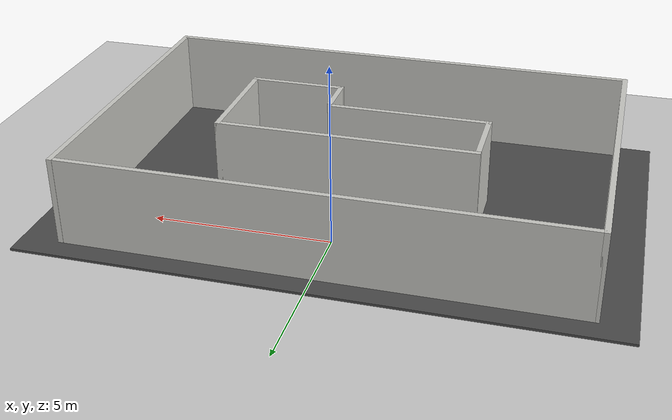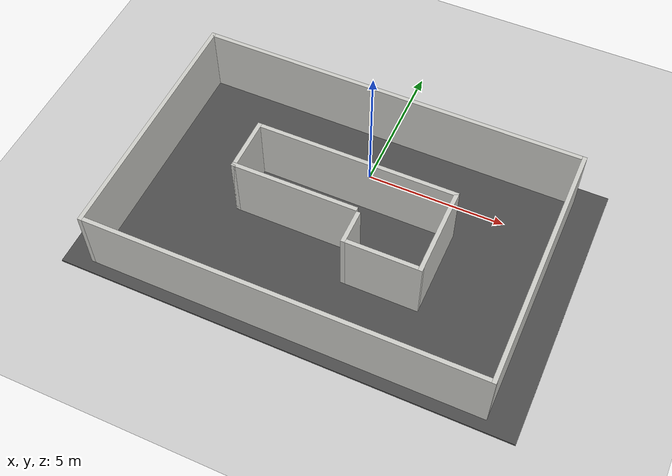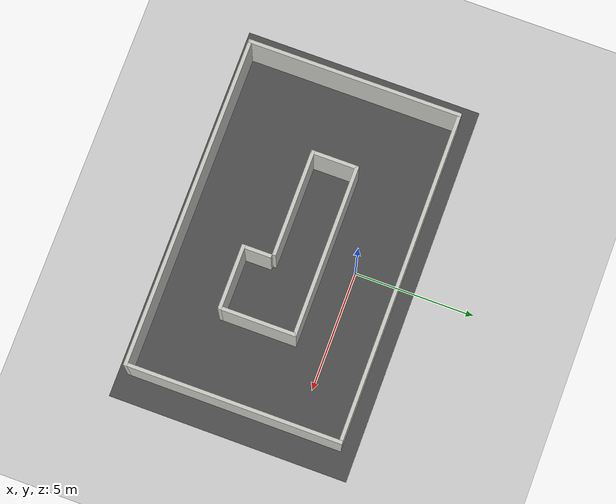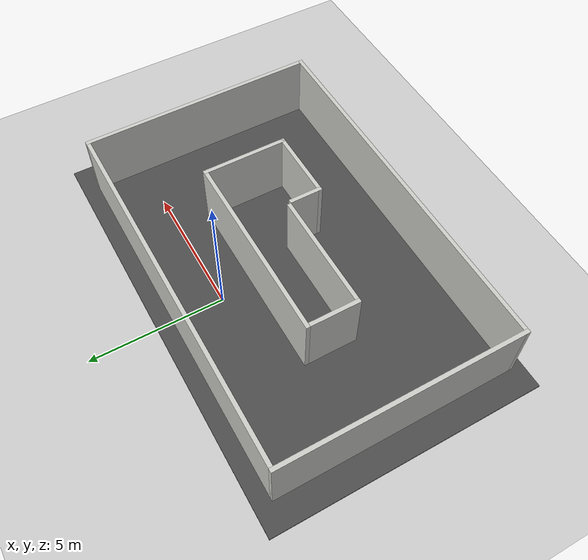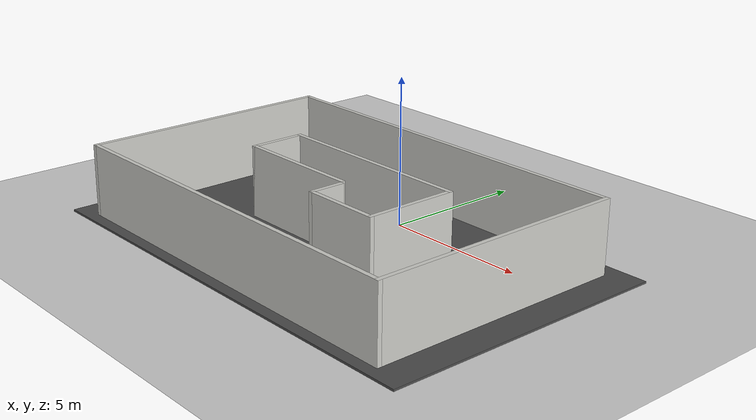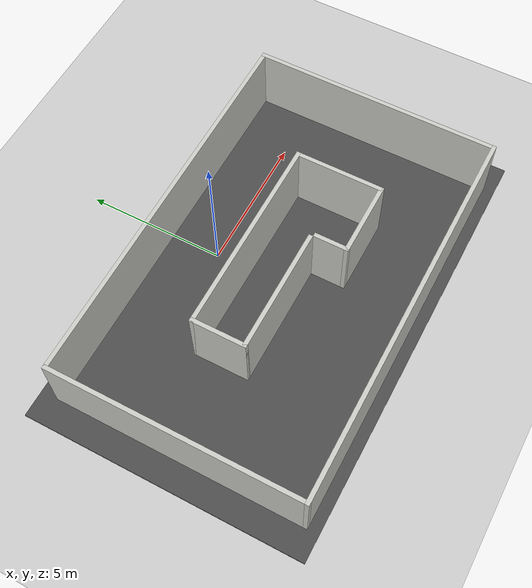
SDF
<sdf version="1.6">
 <world name="default">
  <light name="sun" type="directional">
   <pose>0 0 10 0 -0 0</pose>
   <diffuse>0.8 0.8 0.8 1</diffuse>
   <specular>0.2 0.2 0.2 1</specular>
   <attenuation>
    <range>1000</range>
    <constant>0.9</constant>
    <linear>0.01</linear>
    <quadratic>0.001</quadratic>
   </attenuation>
   <direction>-0.5 0.1 -0.9</direction>
  </light>
  <model name="ground_plane">
   <static>1</static>
   <link name="link">
    <collision name="collision">
     <geometry><plane><normal>0 0 1</normal><size>100 100</size></plane></geometry>
     <surface><friction><ode><mu>100</mu><mu2>50</mu2></ode></friction></surface>
    </collision>
    <visual name="visual">
     <cast_shadows>0</cast_shadows>
     <geometry><plane><normal>0 0 1</normal><size>100 100</size></plane></geometry>
     <material>
      <script><uri>file://media/materials/scripts/gazebo.material</uri><name>Gazebo/Grey</name></script>
     </material>
    </visual>
    <velocity_decay><linear>0</linear><angular>0</angular></velocity_decay>
   </link>
  </model>
  <physics type="ode">
   <max_step_size>0.01</max_step_size>
   <real_time_factor>1</real_time_factor>
   <real_time_update_rate>100</real_time_update_rate>
   <gravity>0 0 -9.8</gravity>
  </physics>
  <scene><ambient>0.4 0.4 0.4 1</ambient><background>0.7 0.7 0.7 1</background><shadows>1</shadows></scene>
  <spherical_coordinates>
   <surface_model>EARTH_WGS84</surface_model>
   <latitude_deg>0</latitude_deg>
   <longitude_deg>0</longitude_deg>
   <elevation>0</elevation>
   <heading_deg>0</heading_deg>
  </spherical_coordinates>
  <gravity>0 0 -9.8</gravity>
  <magnetic_field>6e-06 2.3e-05 -4.2e-05</magnetic_field>
  <atmosphere type="adiabatic"/>
  <model name="room_0">
   <pose>-0.064136 -2.60385 0 0 -0 0</pose>
   <link name="Wall_0">
    <collision name="Wall_0_Collision">
     <geometry><box><size>13.75 0.15 2.5</size></box></geometry>
     <pose>0 0 1.25 0 -0 0</pose>
    </collision>
    <visual name="Wall_0_Visual">
     <pose>0 0 1.25 0 -0 0</pose>
     <geometry><box><size>13.75 0.15 2.5</size></box></geometry>
     <material>
      <script><uri>file://media/materials/scripts/gazebo.material</uri><name>Gazebo/CeilingTiled</name></script>
      <ambient>1 1 1 1</ambient>
     </material>
    </visual>
    <pose>-0.027328 4.425 0 0 -0 0</pose>
   </link>
   <link name="Wall_12">
    <collision name="Wall_12_Collision">
     <geometry><box><size>2 0.15 2.5</size></box></geometry>
     <pose>0 0 1.25 0 -0 0</pose>
    </collision>
    <visual name="Wall_12_Visual">
     <pose>0 0 1.25 0 -0 0</pose>
     <geometry><box><size>2 0.15 2.5</size></box></geometry>
     <material>
      <script><uri>file://media/materials/scripts/gazebo.material</uri><name>Gazebo/CeilingTiled</name></script>
      <ambient>1 1 1 1</ambient>
     </material>
    </visual>
    <pose>-3.49908 0.404259 0 0 0 -1.5708</pose>
   </link>
   <link name="Wall_13">
    <collision name="Wall_13_Collision">
     <geometry><box><size>4.5 0.15 2.5</size></box></geometry>
     <pose>0 0 1.25 0 -0 0</pose>
    </collision>
    <visual name="Wall_13_Visual">
     <pose>0 0 1.25 0 -0 0</pose>
     <geometry><box><size>4.5 0.15 2.5</size></box></geometry>
     <material>
      <script><uri>file://media/materials/scripts/gazebo.material</uri><name>Gazebo/CeilingTiled</name></script>
      <ambient>1 1 1 1</ambient>
     </material>
    </visual>
    <pose>-1.32408 -0.520741 0 0 -0 0</pose>
   </link>
   <link name="Wall_2">
    <collision name="Wall_2_Collision">
     <geometry><box><size>9 0.15 2.5</size></box></geometry>
     <pose>0 0 1.25 0 -0 0</pose>
    </collision>
    <visual name="Wall_2_Visual">
     <pose>0 0 1.25 0 -0 0</pose>
     <geometry><box><size>9 0.15 2.5</size></box></geometry>
     <material>
      <script><uri>file://media/materials/scripts/gazebo.material</uri><name>Gazebo/CeilingTiled</name></script>
      <ambient>1 1 1 1</ambient>
     </material>
    </visual>
    <pose>6.925 0 0 0 0 -1.5708</pose>
   </link>
   <link name="Wall_3">
    <collision name="Wall_3_Collision">
     <geometry><box><size>14 0.15 2.5</size></box></geometry>
     <pose>0 0 1.25 0 -0 0</pose>
    </collision>
    <visual name="Wall_3_Visual">
     <pose>0 0 1.25 0 -0 0</pose>
     <geometry><box><size>14 0.15 2.5</size></box></geometry>
     <material>
      <script><uri>file://media/materials/scripts/gazebo.material</uri><name>Gazebo/CeilingTiled</name></script>
      <ambient>1 1 1 1</ambient>
     </material>
    </visual>
    <pose>0 -4.425 0 0 -0 3.14159</pose>
   </link>
   <link name="Wall_4">
    <collision name="Wall_4_Collision">
     <geometry><box><size>9 0.15 2.5</size></box></geometry>
     <pose>0 0 1.25 0 -0 0</pose>
    </collision>
    <visual name="Wall_4_Visual">
     <pose>0 0 1.25 0 -0 0</pose>
     <geometry><box><size>9 0.15 2.5</size></box></geometry>
     <material>
      <script><uri>file://media/materials/scripts/gazebo.material</uri><name>Gazebo/CeilingTiled</name></script>
      <ambient>1 1 1 1</ambient>
     </material>
    </visual>
    <pose>-6.925 0 0 0 -0 1.5708</pose>
   </link>
   <link name="Wall_6">
    <collision name="Wall_6_Collision">
     <geometry><box><size>7.25 0.15 2.5</size></box></geometry>
     <pose>0 0 1.25 0 -0 0</pose>
    </collision>
    <visual name="Wall_6_Visual">
     <pose>0 0 1.25 0 -0 0</pose>
     <geometry><box><size>7.25 0.15 2.5</size></box></geometry>
     <material>
      <script><uri>file://media/materials/scripts/gazebo.material</uri><name>Gazebo/CeilingTiled</name></script>
      <ambient>1 1 1 1</ambient>
     </material>
    </visual>
    <pose>0.050923 1.32926 0 0 -0 0</pose>
   </link>
   <link name="Wall_7">
    <collision name="Wall_7_Collision">
     <geometry><box><size>3.25 0.15 2.5</size></box></geometry>
     <pose>0 0 1.25 0 -0 0</pose>
    </collision>
    <visual name="Wall_7_Visual">
     <pose>0 0 1.25 0 -0 0</pose>
     <geometry><box><size>3.25 0.15 2.5</size></box></geometry>
     <material>
      <script><uri>file://media/materials/scripts/gazebo.material</uri><name>Gazebo/CeilingTiled</name></script>
      <ambient>1 1 1 1</ambient>
     </material>
    </visual>
    <pose>3.60092 -0.220741 0 0 0 -1.5708</pose>
   </link>
   <link name="Wall_8">
    <collision name="Wall_8_Collision">
     <geometry><box><size>2.75 0.15 2.5</size></box></geometry>
     <pose>0 0 1.25 0 -0 0</pose>
    </collision>
    <visual name="Wall_8_Visual">
     <pose>0 0 1.25 0 -0 0</pose>
     <geometry><box><size>2.75 0.15 2.5</size></box></geometry>
     <material>
      <script><uri>file://media/materials/scripts/gazebo.material</uri><name>Gazebo/CeilingTiled</name></script>
      <ambient>1 1 1 1</ambient>
     </material>
    </visual>
    <pose>2.30092 -1.77074 0 0 -0 3.14159</pose>
   </link>
   <link name="Wall_9">
    <collision name="Wall_9_Collision">
     <geometry><box><size>1.25 0.15 2.5</size></box></geometry>
     <pose>0 0 1.25 0 -0 0</pose>
    </collision>
    <visual name="Wall_9_Visual">
     <pose>0 0 1.25 0 -0 0</pose>
     <geometry><box><size>1.25 0.15 2.5</size></box></geometry>
     <material>
      <script><uri>file://media/materials/scripts/gazebo.material</uri><name>Gazebo/CeilingTiled</name></script>
      <ambient>1 1 1 1</ambient>
     </material>
    </visual>
    <pose>1.00092 -1.22074 0 0 -0 1.5708</pose>
   </link>
   <static>1</static>
  </model>
  <model name="asphalt_plane">
   <link name="link">
    <pose>0 -2.5 0 0 -0 0</pose>
    <velocity_decay><linear>0</linear><angular>0</angular></velocity_decay>
    <visual name="visual">
     <cast_shadows>0</cast_shadows>
     <geometry><box><size>16 10 0.1</size></box></geometry>
     <material>
      <script>
       <uri>model://asphalt_plane/materials/scripts</uri>
       <uri>model://asphalt_plane/materials/textures</uri>
       <name>vrc/asphalt</name>
      </script>
      <ambient>0.5 0.5 0.5 1</ambient>
      <diffuse>0.5 0.5 0.5 1</diffuse>
      <specular>0.2 0.2 0.2 1</specular>
      <emissive>0 0 0 1</emissive>
     </material>
    </visual>
    <collision name="collision">
     <geometry><box><size>16 10 0.1</size></box></geometry>
     <surface>
      <friction>
       <ode><mu>1</mu><mu2>1</mu2><fdir1>0 0 0</fdir1><slip1>0</slip1><slip2>0</slip2></ode>
       <torsional>
        <coefficient>1</coefficient>
        <patch_radius>0</patch_radius>
        <surface_radius>0</surface_radius>
        <use_patch_radius>1</use_patch_radius>
        <ode><slip>0</slip></ode>
       </torsional>
      </friction>
      <bounce><restitution_coefficient>0</restitution_coefficient><threshold>1e+06</threshold></bounce>
      <contact>
       <collide_without_contact>0</collide_without_contact>
       <collide_without_contact_bitmask>1</collide_without_contact_bitmask>
       <collide_bitmask>1</collide_bitmask>
       <ode>
        <soft_cfm>0</soft_cfm>
        <soft_erp>0.2</soft_erp>
        <kp>1e+13</kp>
        <kd>1</kd>
        <max_vel>0.01</max_vel>
        <min_depth>0</min_depth>
       </ode>
       <bullet>
        <split_impulse>1</split_impulse>
        <split_impulse_penetration_threshold>-0.01</split_impulse_penetration_threshold>
        <soft_cfm>0</soft_cfm>
        <soft_erp>0.2</soft_erp>
        <kp>1e+13</kp>
        <kd>1</kd>
       </bullet>
      </contact>
     </surface>
    </collision>
   </link>
   <static>1</static>
  </model>
 </world>
</sdf>
